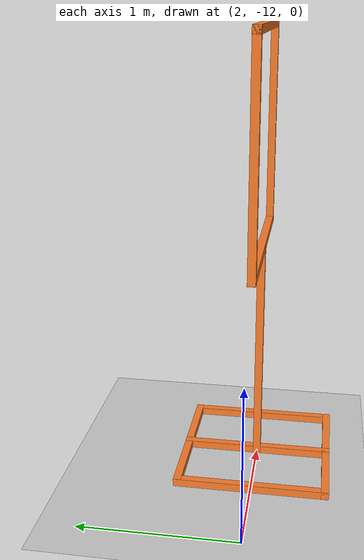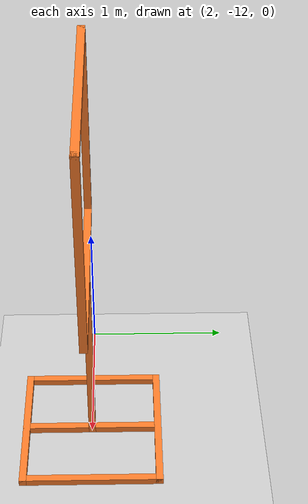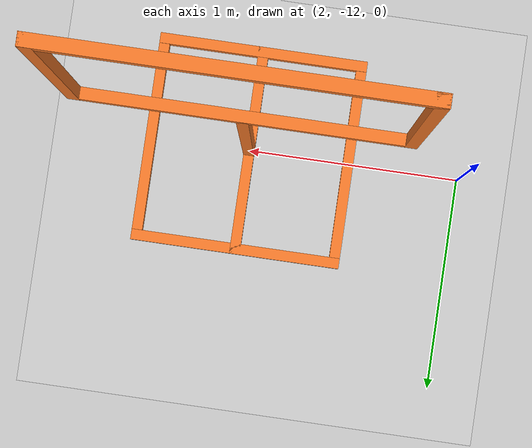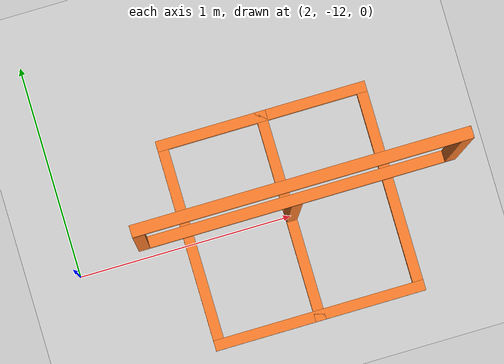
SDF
<sdf version="1.6">
 <world name="default">
  <model name="ground_plane">
   <static>1</static>
   <link name="link">
    <collision name="collision">
     <geometry><plane><normal>0 0 1</normal><size>100 100</size></plane></geometry>
     <surface><friction><ode><mu>100</mu><mu2>50</mu2></ode></friction></surface>
    </collision>
    <visual name="visual">
     <cast_shadows>0</cast_shadows>
     <geometry><plane><normal>0 0 1</normal><size>100 100</size></plane></geometry>
     <material>
      <script><uri>file://media/materials/scripts/gazebo.material</uri><name>Gazebo/Grey</name></script>
     </material>
    </visual>
    <velocity_decay><linear>0</linear><angular>0</angular></velocity_decay>
   </link>
  </model>
  <model name="adr2017_Small_Gate_7">
   <link name="link">
    <pose>0 0 0.75 0 -0 0</pose>
    <inertial>
     <mass>1</mass>
     <inertia>
      <ixx>0.166667</ixx>
      <ixy>0</ixy>
      <ixz>0</ixz>
      <iyy>0.166667</iyy>
      <iyz>0</iyz>
      <izz>0.166667</izz>
     </inertia>
    </inertial>
    <visual name="visual">
     <geometry><box><size>0.05 0.05 1.5</size></box></geometry>
     <material>
      <script><name>Gazebo/Grey</name><uri>file://media/materials/scripts/gazebo.material</uri></script>
      <shader type="vertex"><normal_map>__default__</normal_map></shader>
      <ambient>0.976 0.484 0.164 1</ambient>
      <diffuse>0.976 0.484 0.164 1</diffuse>
      <specular>0.01 0.01 0.01 1</specular>
      <emissive>0 0 0 1</emissive>
     </material>
    </visual>
    <collision name="collision">
     <geometry><box><size>0.05 0.05 1.5</size></box></geometry>
     <surface>
      <friction>
       <ode><mu>1</mu><mu2>1</mu2><fdir1>0 0 0</fdir1><slip1>0</slip1><slip2>0</slip2></ode>
       <torsional>
        <coefficient>1</coefficient>
        <patch_radius>0</patch_radius>
        <surface_radius>0</surface_radius>
        <use_patch_radius>1</use_patch_radius>
        <ode><slip>0</slip></ode>
       </torsional>
      </friction>
      <bounce><restitution_coefficient>0</restitution_coefficient><threshold>1e+06</threshold></bounce>
      <contact>
       <collide_without_contact>0</collide_without_contact>
       <collide_without_contact_bitmask>1</collide_without_contact_bitmask>
       <collide_bitmask>1</collide_bitmask>
       <ode>
        <soft_cfm>0</soft_cfm>
        <soft_erp>0.2</soft_erp>
        <kp>1e+13</kp>
        <kd>1</kd>
        <max_vel>0.01</max_vel>
        <min_depth>0</min_depth>
       </ode>
       <bullet>
        <split_impulse>1</split_impulse>
        <split_impulse_penetration_threshold>-0.01</split_impulse_penetration_threshold>
        <soft_cfm>0</soft_cfm>
        <soft_erp>0.2</soft_erp>
        <kp>1e+13</kp>
        <kd>1</kd>
       </bullet>
      </contact>
     </surface>
    </collision>
   </link>
   <link name="link_2">
    <pose>0 0 0.025 0 -0 0</pose>
    <inertial>
     <mass>1</mass>
     <inertia>
      <ixx>0.166667</ixx>
      <ixy>0</ixy>
      <ixz>0</ixz>
      <iyy>0.166667</iyy>
      <iyz>0</iyz>
      <izz>0.166667</izz>
     </inertia>
    </inertial>
    <visual name="visual">
     <geometry><box><size>0.05 1 0.05</size></box></geometry>
     <material>
      <script><name>Gazebo/Grey</name><uri>file://media/materials/scripts/gazebo.material</uri></script>
      <shader type="vertex"><normal_map>__default__</normal_map></shader>
      <ambient>0.976 0.484 0.164 1</ambient>
      <diffuse>0.976 0.484 0.164 1</diffuse>
      <specular>0.01 0.01 0.01 1</specular>
      <emissive>0 0 0 1</emissive>
     </material>
    </visual>
    <collision name="collision">
     <geometry><box><size>0.05 1 0.05</size></box></geometry>
     <surface>
      <friction>
       <ode><mu>1</mu><mu2>1</mu2><fdir1>0 0 0</fdir1><slip1>0</slip1><slip2>0</slip2></ode>
       <torsional>
        <coefficient>1</coefficient>
        <patch_radius>0</patch_radius>
        <surface_radius>0</surface_radius>
        <use_patch_radius>1</use_patch_radius>
        <ode><slip>0</slip></ode>
       </torsional>
      </friction>
      <bounce><restitution_coefficient>0</restitution_coefficient><threshold>1e+06</threshold></bounce>
      <contact>
       <collide_without_contact>0</collide_without_contact>
       <collide_without_contact_bitmask>1</collide_without_contact_bitmask>
       <collide_bitmask>1</collide_bitmask>
       <ode>
        <soft_cfm>0</soft_cfm>
        <soft_erp>0.2</soft_erp>
        <kp>1e+13</kp>
        <kd>1</kd>
        <max_vel>0.01</max_vel>
        <min_depth>0</min_depth>
       </ode>
       <bullet>
        <split_impulse>1</split_impulse>
        <split_impulse_penetration_threshold>-0.01</split_impulse_penetration_threshold>
        <soft_cfm>0</soft_cfm>
        <soft_erp>0.2</soft_erp>
        <kp>1e+13</kp>
        <kd>1</kd>
       </bullet>
      </contact>
     </surface>
    </collision>
   </link>
   <link name="link_3">
    <pose>0.475 0 0.024 0 -0 0</pose>
    <inertial>
     <mass>1</mass>
     <inertia>
      <ixx>0.166667</ixx>
      <ixy>0</ixy>
      <ixz>0</ixz>
      <iyy>0.166667</iyy>
      <iyz>0</iyz>
      <izz>0.166667</izz>
     </inertia>
    </inertial>
    <visual name="visual">
     <geometry><box><size>0.05 1 0.05</size></box></geometry>
     <material>
      <script><name>Gazebo/Grey</name><uri>file://media/materials/scripts/gazebo.material</uri></script>
      <shader type="vertex"><normal_map>__default__</normal_map></shader>
      <ambient>0.976 0.484 0.164 1</ambient>
      <diffuse>0.976 0.484 0.164 1</diffuse>
      <specular>0.01 0.01 0.01 1</specular>
      <emissive>0 0 0 1</emissive>
     </material>
    </visual>
    <collision name="collision">
     <geometry><box><size>0.05 1 0.05</size></box></geometry>
     <surface>
      <friction>
       <ode><mu>1</mu><mu2>1</mu2><fdir1>0 0 0</fdir1><slip1>0</slip1><slip2>0</slip2></ode>
       <torsional>
        <coefficient>1</coefficient>
        <patch_radius>0</patch_radius>
        <surface_radius>0</surface_radius>
        <use_patch_radius>1</use_patch_radius>
        <ode><slip>0</slip></ode>
       </torsional>
      </friction>
      <bounce><restitution_coefficient>0</restitution_coefficient><threshold>1e+06</threshold></bounce>
      <contact>
       <collide_without_contact>0</collide_without_contact>
       <collide_without_contact_bitmask>1</collide_without_contact_bitmask>
       <collide_bitmask>1</collide_bitmask>
       <ode>
        <soft_cfm>0</soft_cfm>
        <soft_erp>0.2</soft_erp>
        <kp>1e+13</kp>
        <kd>1</kd>
        <max_vel>0.01</max_vel>
        <min_depth>0</min_depth>
       </ode>
       <bullet>
        <split_impulse>1</split_impulse>
        <split_impulse_penetration_threshold>-0.01</split_impulse_penetration_threshold>
        <soft_cfm>0</soft_cfm>
        <soft_erp>0.2</soft_erp>
        <kp>1e+13</kp>
        <kd>1</kd>
       </bullet>
      </contact>
     </surface>
    </collision>
   </link>
   <link name="link_4">
    <pose>-0.475 0 0.024 0 -0 0</pose>
    <inertial>
     <mass>1</mass>
     <inertia>
      <ixx>0.166667</ixx>
      <ixy>0</ixy>
      <ixz>0</ixz>
      <iyy>0.166667</iyy>
      <iyz>0</iyz>
      <izz>0.166667</izz>
     </inertia>
    </inertial>
    <visual name="visual">
     <geometry><box><size>0.05 1 0.05</size></box></geometry>
     <material>
      <script><name>Gazebo/Grey</name><uri>file://media/materials/scripts/gazebo.material</uri></script>
      <shader type="vertex"><normal_map>__default__</normal_map></shader>
      <ambient>0.976 0.484 0.164 1</ambient>
      <diffuse>0.976 0.484 0.164 1</diffuse>
      <specular>0.01 0.01 0.01 1</specular>
      <emissive>0 0 0 1</emissive>
     </material>
    </visual>
    <collision name="collision">
     <geometry><box><size>0.05 1 0.05</size></box></geometry>
     <surface>
      <friction>
       <ode><mu>1</mu><mu2>1</mu2><fdir1>0 0 0</fdir1><slip1>0</slip1><slip2>0</slip2></ode>
       <torsional>
        <coefficient>1</coefficient>
        <patch_radius>0</patch_radius>
        <surface_radius>0</surface_radius>
        <use_patch_radius>1</use_patch_radius>
        <ode><slip>0</slip></ode>
       </torsional>
      </friction>
      <bounce><restitution_coefficient>0</restitution_coefficient><threshold>1e+06</threshold></bounce>
      <contact>
       <collide_without_contact>0</collide_without_contact>
       <collide_without_contact_bitmask>1</collide_without_contact_bitmask>
       <collide_bitmask>1</collide_bitmask>
       <ode>
        <soft_cfm>0</soft_cfm>
        <soft_erp>0.2</soft_erp>
        <kp>1e+13</kp>
        <kd>1</kd>
        <max_vel>0.01</max_vel>
        <min_depth>0</min_depth>
       </ode>
       <bullet>
        <split_impulse>1</split_impulse>
        <split_impulse_penetration_threshold>-0.01</split_impulse_penetration_threshold>
        <soft_cfm>0</soft_cfm>
        <soft_erp>0.2</soft_erp>
        <kp>1e+13</kp>
        <kd>1</kd>
       </bullet>
      </contact>
     </surface>
    </collision>
   </link>
   <link name="link_5">
    <pose>0 0.475 0.025 0 -0 0</pose>
    <inertial>
     <mass>1</mass>
     <inertia>
      <ixx>0.166667</ixx>
      <ixy>0</ixy>
      <ixz>0</ixz>
      <iyy>0.166667</iyy>
      <iyz>0</iyz>
      <izz>0.166667</izz>
     </inertia>
    </inertial>
    <visual name="visual">
     <geometry><box><size>1 0.05 0.05</size></box></geometry>
     <material>
      <script><name>Gazebo/Grey</name><uri>file://media/materials/scripts/gazebo.material</uri></script>
      <shader type="vertex"><normal_map>__default__</normal_map></shader>
      <ambient>0.976 0.484 0.164 1</ambient>
      <diffuse>0.976 0.484 0.164 1</diffuse>
      <specular>0.01 0.01 0.01 1</specular>
      <emissive>0 0 0 1</emissive>
     </material>
    </visual>
    <collision name="collision">
     <geometry><box><size>1 0.05 0.05</size></box></geometry>
     <surface>
      <friction>
       <ode><mu>1</mu><mu2>1</mu2><fdir1>0 0 0</fdir1><slip1>0</slip1><slip2>0</slip2></ode>
       <torsional>
        <coefficient>1</coefficient>
        <patch_radius>0</patch_radius>
        <surface_radius>0</surface_radius>
        <use_patch_radius>1</use_patch_radius>
        <ode><slip>0</slip></ode>
       </torsional>
      </friction>
      <bounce><restitution_coefficient>0</restitution_coefficient><threshold>1e+06</threshold></bounce>
      <contact>
       <collide_without_contact>0</collide_without_contact>
       <collide_without_contact_bitmask>1</collide_without_contact_bitmask>
       <collide_bitmask>1</collide_bitmask>
       <ode>
        <soft_cfm>0</soft_cfm>
        <soft_erp>0.2</soft_erp>
        <kp>1e+13</kp>
        <kd>1</kd>
        <max_vel>0.01</max_vel>
        <min_depth>0</min_depth>
       </ode>
       <bullet>
        <split_impulse>1</split_impulse>
        <split_impulse_penetration_threshold>-0.01</split_impulse_penetration_threshold>
        <soft_cfm>0</soft_cfm>
        <soft_erp>0.2</soft_erp>
        <kp>1e+13</kp>
        <kd>1</kd>
       </bullet>
      </contact>
     </surface>
    </collision>
   </link>
   <link name="link_6">
    <pose>0 -0.475 0.025 0 -0 0</pose>
    <inertial>
     <mass>1</mass>
     <inertia>
      <ixx>0.166667</ixx>
      <ixy>0</ixy>
      <ixz>0</ixz>
      <iyy>0.166667</iyy>
      <iyz>0</iyz>
      <izz>0.166667</izz>
     </inertia>
    </inertial>
    <visual name="visual">
     <geometry><box><size>1 0.05 0.05</size></box></geometry>
     <material>
      <script><name>Gazebo/Grey</name><uri>file://media/materials/scripts/gazebo.material</uri></script>
      <shader type="vertex"><normal_map>__default__</normal_map></shader>
      <ambient>0.976 0.484 0.164 1</ambient>
      <diffuse>0.976 0.484 0.164 1</diffuse>
      <specular>0.01 0.01 0.01 1</specular>
      <emissive>0 0 0 1</emissive>
     </material>
    </visual>
    <collision name="collision">
     <geometry><box><size>1 0.05 0.05</size></box></geometry>
     <surface>
      <friction>
       <ode><mu>1</mu><mu2>1</mu2><fdir1>0 0 0</fdir1><slip1>0</slip1><slip2>0</slip2></ode>
       <torsional>
        <coefficient>1</coefficient>
        <patch_radius>0</patch_radius>
        <surface_radius>0</surface_radius>
        <use_patch_radius>1</use_patch_radius>
        <ode><slip>0</slip></ode>
       </torsional>
      </friction>
      <bounce><restitution_coefficient>0</restitution_coefficient><threshold>1e+06</threshold></bounce>
      <contact>
       <collide_without_contact>0</collide_without_contact>
       <collide_without_contact_bitmask>1</collide_without_contact_bitmask>
       <collide_bitmask>1</collide_bitmask>
       <ode>
        <soft_cfm>0</soft_cfm>
        <soft_erp>0.2</soft_erp>
        <kp>1e+13</kp>
        <kd>1</kd>
        <max_vel>0.01</max_vel>
        <min_depth>0</min_depth>
       </ode>
       <bullet>
        <split_impulse>1</split_impulse>
        <split_impulse_penetration_threshold>-0.01</split_impulse_penetration_threshold>
        <soft_cfm>0</soft_cfm>
        <soft_erp>0.2</soft_erp>
        <kp>1e+13</kp>
        <kd>1</kd>
       </bullet>
      </contact>
     </surface>
    </collision>
   </link>
   <link name="link_7">
    <pose>0 0 2.85 0 -0 0</pose>
    <inertial>
     <mass>1</mass>
     <inertia>
      <ixx>0.166667</ixx>
      <ixy>0</ixy>
      <ixz>0</ixz>
      <iyy>0.166667</iyy>
      <iyz>0</iyz>
      <izz>0.166667</izz>
     </inertia>
    </inertial>
    <visual name="visual">
     <geometry><box><size>1.4 0.05 0.05</size></box></geometry>
     <material>
      <script><name>Gazebo/Grey</name><uri>file://media/materials/scripts/gazebo.material</uri></script>
      <shader type="vertex"><normal_map>__default__</normal_map></shader>
      <ambient>0.976 0.484 0.164 1</ambient>
      <diffuse>0.976 0.484 0.164 1</diffuse>
      <specular>0.01 0.01 0.01 1</specular>
      <emissive>0 0 0 1</emissive>
     </material>
    </visual>
    <collision name="collision">
     <geometry><box><size>1.4 0.05 0.05</size></box></geometry>
     <surface>
      <friction>
       <ode><mu>1</mu><mu2>1</mu2><fdir1>0 0 0</fdir1><slip1>0</slip1><slip2>0</slip2></ode>
       <torsional>
        <coefficient>1</coefficient>
        <patch_radius>0</patch_radius>
        <surface_radius>0</surface_radius>
        <use_patch_radius>1</use_patch_radius>
        <ode><slip>0</slip></ode>
       </torsional>
      </friction>
      <bounce><restitution_coefficient>0</restitution_coefficient><threshold>1e+06</threshold></bounce>
      <contact>
       <collide_without_contact>0</collide_without_contact>
       <collide_without_contact_bitmask>1</collide_without_contact_bitmask>
       <collide_bitmask>1</collide_bitmask>
       <ode>
        <soft_cfm>0</soft_cfm>
        <soft_erp>0.2</soft_erp>
        <kp>1e+13</kp>
        <kd>1</kd>
        <max_vel>0.01</max_vel>
        <min_depth>0</min_depth>
       </ode>
       <bullet>
        <split_impulse>1</split_impulse>
        <split_impulse_penetration_threshold>-0.01</split_impulse_penetration_threshold>
        <soft_cfm>0</soft_cfm>
        <soft_erp>0.2</soft_erp>
        <kp>1e+13</kp>
        <kd>1</kd>
       </bullet>
      </contact>
     </surface>
    </collision>
   </link>
   <link name="link_8">
    <pose>0 0 1.5 0 -0 0</pose>
    <inertial>
     <mass>1</mass>
     <inertia>
      <ixx>0.166667</ixx>
      <ixy>0</ixy>
      <ixz>0</ixz>
      <iyy>0.166667</iyy>
      <iyz>0</iyz>
      <izz>0.166667</izz>
     </inertia>
    </inertial>
    <visual name="visual">
     <geometry><box><size>1.4 0.05 0.05</size></box></geometry>
     <material>
      <script><name>Gazebo/Grey</name><uri>file://media/materials/scripts/gazebo.material</uri></script>
      <shader type="vertex"><normal_map>__default__</normal_map></shader>
      <ambient>0.976 0.484 0.164 1</ambient>
      <diffuse>0.976 0.484 0.164 1</diffuse>
      <specular>0.01 0.01 0.01 1</specular>
      <emissive>0 0 0 1</emissive>
     </material>
    </visual>
    <collision name="collision">
     <geometry><box><size>1.4 0.05 0.05</size></box></geometry>
     <surface>
      <friction>
       <ode><mu>1</mu><mu2>1</mu2><fdir1>0 0 0</fdir1><slip1>0</slip1><slip2>0</slip2></ode>
       <torsional>
        <coefficient>1</coefficient>
        <patch_radius>0</patch_radius>
        <surface_radius>0</surface_radius>
        <use_patch_radius>1</use_patch_radius>
        <ode><slip>0</slip></ode>
       </torsional>
      </friction>
      <bounce><restitution_coefficient>0</restitution_coefficient><threshold>1e+06</threshold></bounce>
      <contact>
       <collide_without_contact>0</collide_without_contact>
       <collide_without_contact_bitmask>1</collide_without_contact_bitmask>
       <collide_bitmask>1</collide_bitmask>
       <ode>
        <soft_cfm>0</soft_cfm>
        <soft_erp>0.2</soft_erp>
        <kp>1e+13</kp>
        <kd>1</kd>
        <max_vel>0.01</max_vel>
        <min_depth>0</min_depth>
       </ode>
       <bullet>
        <split_impulse>1</split_impulse>
        <split_impulse_penetration_threshold>-0.01</split_impulse_penetration_threshold>
        <soft_cfm>0</soft_cfm>
        <soft_erp>0.2</soft_erp>
        <kp>1e+13</kp>
        <kd>1</kd>
       </bullet>
      </contact>
     </surface>
    </collision>
   </link>
   <link name="link_9">
    <pose>-0.675 0 1.475 0 -0 0</pose>
    <inertial>
     <mass>1</mass>
     <inertia>
      <ixx>0.166667</ixx>
      <ixy>0</ixy>
      <ixz>0</ixz>
      <iyy>0.166667</iyy>
      <iyz>0</iyz>
      <izz>0.166667</izz>
     </inertia>
    </inertial>
    <visual name="visual">
     <geometry><box><size>0.05 0.05 1.4</size></box></geometry>
     <material>
      <script><name>Gazebo/Grey</name><uri>file://media/materials/scripts/gazebo.material</uri></script>
      <shader type="vertex"><normal_map>__default__</normal_map></shader>
      <ambient>0.976 0.484 0.164 1</ambient>
      <diffuse>0.976 0.484 0.164 1</diffuse>
      <specular>0.01 0.01 0.01 1</specular>
      <emissive>0 0 0 1</emissive>
     </material>
     <pose>0 0 0.7 0 -0 0</pose>
    </visual>
    <collision name="collision">
     <pose>0 0 0.7 0 -0 0</pose>
     <geometry><box><size>0.05 0.05 1.4</size></box></geometry>
     <surface>
      <friction>
       <ode><mu>1</mu><mu2>1</mu2><fdir1>0 0 0</fdir1><slip1>0</slip1><slip2>0</slip2></ode>
       <torsional>
        <coefficient>1</coefficient>
        <patch_radius>0</patch_radius>
        <surface_radius>0</surface_radius>
        <use_patch_radius>1</use_patch_radius>
        <ode><slip>0</slip></ode>
       </torsional>
      </friction>
      <bounce><restitution_coefficient>0</restitution_coefficient><threshold>1e+06</threshold></bounce>
      <contact>
       <collide_without_contact>0</collide_without_contact>
       <collide_without_contact_bitmask>1</collide_without_contact_bitmask>
       <collide_bitmask>1</collide_bitmask>
       <ode>
        <soft_cfm>0</soft_cfm>
        <soft_erp>0.2</soft_erp>
        <kp>1e+13</kp>
        <kd>1</kd>
        <max_vel>0.01</max_vel>
        <min_depth>0</min_depth>
       </ode>
       <bullet>
        <split_impulse>1</split_impulse>
        <split_impulse_penetration_threshold>-0.01</split_impulse_penetration_threshold>
        <soft_cfm>0</soft_cfm>
        <soft_erp>0.2</soft_erp>
        <kp>1e+13</kp>
        <kd>1</kd>
       </bullet>
      </contact>
     </surface>
    </collision>
   </link>
   <link name="link_10">
    <pose>0.675 0 1.475 0 -0 0</pose>
    <inertial>
     <mass>1</mass>
     <inertia>
      <ixx>0.166667</ixx>
      <ixy>0</ixy>
      <ixz>0</ixz>
      <iyy>0.166667</iyy>
      <iyz>0</iyz>
      <izz>0.166667</izz>
     </inertia>
    </inertial>
    <visual name="visual">
     <geometry><box><size>0.05 0.05 1.4</size></box></geometry>
     <material>
      <script><name>Gazebo/Grey</name><uri>file://media/materials/scripts/gazebo.material</uri></script>
      <shader type="vertex"><normal_map>__default__</normal_map></shader>
      <ambient>0.976 0.484 0.164 1</ambient>
      <diffuse>0.976 0.484 0.164 1</diffuse>
      <specular>0.01 0.01 0.01 1</specular>
      <emissive>0 0 0 1</emissive>
     </material>
     <pose>0 0 0.7 0 -0 0</pose>
    </visual>
    <collision name="collision">
     <pose>0 0 0.7 0 -0 0</pose>
     <geometry><box><size>0.05 0.05 1.4</size></box></geometry>
     <surface>
      <friction>
       <ode><mu>1</mu><mu2>1</mu2><fdir1>0 0 0</fdir1><slip1>0</slip1><slip2>0</slip2></ode>
       <torsional>
        <coefficient>1</coefficient>
        <patch_radius>0</patch_radius>
        <surface_radius>0</surface_radius>
        <use_patch_radius>1</use_patch_radius>
        <ode><slip>0</slip></ode>
       </torsional>
      </friction>
      <bounce><restitution_coefficient>0</restitution_coefficient><threshold>1e+06</threshold></bounce>
      <contact>
       <collide_without_contact>0</collide_without_contact>
       <collide_without_contact_bitmask>1</collide_without_contact_bitmask>
       <collide_bitmask>1</collide_bitmask>
       <ode>
        <soft_cfm>0</soft_cfm>
        <soft_erp>0.2</soft_erp>
        <kp>1e+13</kp>
        <kd>1</kd>
        <max_vel>0.01</max_vel>
        <min_depth>0</min_depth>
       </ode>
       <bullet>
        <split_impulse>1</split_impulse>
        <split_impulse_penetration_threshold>-0.01</split_impulse_penetration_threshold>
        <soft_cfm>0</soft_cfm>
        <soft_erp>0.2</soft_erp>
        <kp>1e+13</kp>
        <kd>1</kd>
       </bullet>
      </contact>
     </surface>
    </collision>
   </link>
   <static>1</static>
   <pose>3 -12 0 0 -0 0</pose>
  </model>
 </world>
</sdf>
